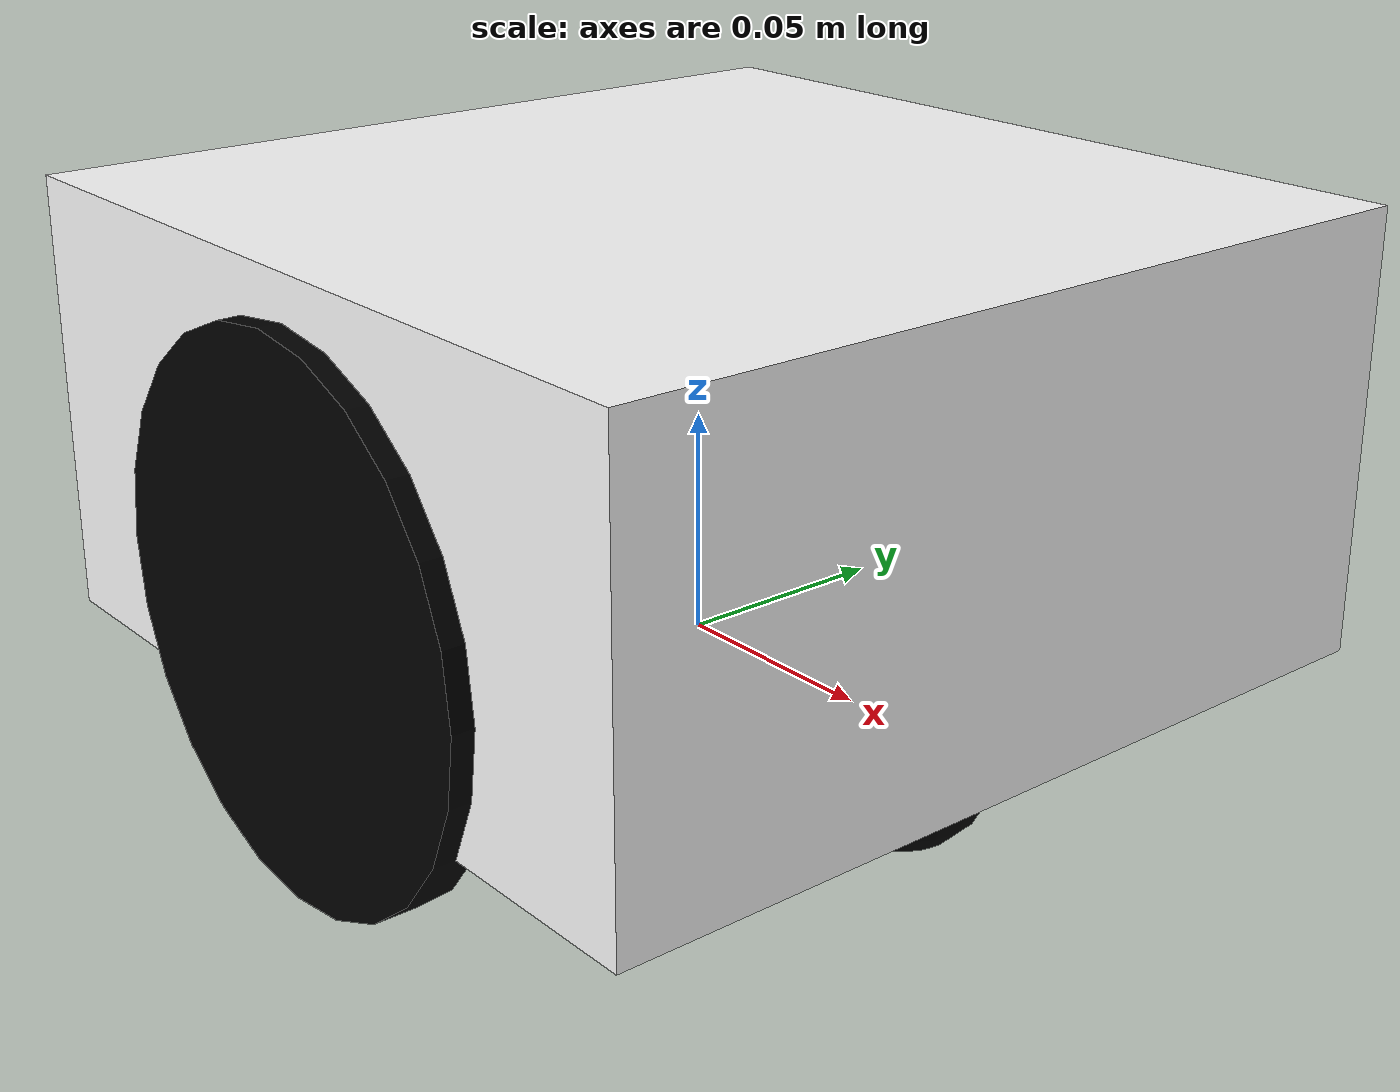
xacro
<?xml version="1.0"?>
<robot name="ogmen_bot" xmlns:xacro="http://www.ros.org/wiki/xacro">

  <xacro:include filename="inertial.urdf.xacro"/>

  <!-- Materials -->
  <material name="white">
    <color rgba="1 1 1 1"/>
  </material>

  <material name="black">
    <color rgba="0 0 0 1"/>
  </material>

  <!-- Base link -->
  <link name="base_link"/>

  <!-- Base Footprint -->
  <joint name="base_footprint_joint" type="fixed">
    <parent link="base_link"/>
    <child link="base_footprint"/>
    <origin xyz="0 0 0" rpy="0 0 0"/>
  </joint>

  <link name="base_footprint"/>

  <!-- Chassis -->
  <joint name="chassis_joint" type="fixed">
    <parent link="base_link"/>
    <child link="chassis"/>
    <origin xyz="0 0 0.05" rpy="0 0 0"/> <!-- half of height -->
  </joint>

  <link name="chassis">
    <visual>
      <origin xyz="0 0 0" rpy="0 0 0"/>
      <geometry>
        <box size="0.2 0.2 0.1"/>
      </geometry>
      <material name="white"/>
    </visual>
    <collision>
      <origin xyz="0 0 0" rpy="0 0 0"/>
      <geometry>
        <box size="0.2 0.2 0.1"/>
      </geometry>
    </collision>
    <xacro:inertial_box mass="50" x="0.2" y="0.2" z="0.1">
      <origin xyz="0 0 0" rpy="0 0 0"/>
    </xacro:inertial_box>
  </link>

  <gazebo reference="chassis">
    <material>Gazebo/white</material>
  </gazebo>

  <!-- Left Wheel -->
  <joint name="left_wheel_joint" type="continuous">
    <parent link="base_link"/>
    <child link="left_wheel"/>
    <origin xyz="0 0.1 0.03" rpy="-${pi/2} 0 0"/>
    <axis xyz="0 0 1"/>
  </joint>

  <link name="left_wheel">
    <visual>
      <geometry>
        <cylinder radius="0.06" length="0.01"/>
      </geometry>
      <material name="black"/>
    </visual>
    <collision>
      <geometry>
        <cylinder radius="0.06" length="0.01"/>
      </geometry>
    </collision>
    <xacro:inertial_cylinder mass="10" length="0.01" radius="0.06">
      <origin xyz="0 0 0" rpy="0 0 0"/>
    </xacro:inertial_cylinder>
  </link>

  <gazebo reference="left_wheel">
    <material>Gazebo/Black</material>
  </gazebo>

  <!-- Right Wheel -->
  <joint name="right_wheel_joint" type="continuous">
    <parent link="base_link"/>
    <child link="right_wheel"/>
    <origin xyz="0 -0.1 0.03" rpy="${pi/2} 0 0"/>
    <axis xyz="0 0 -1"/>
  </joint>

  <link name="right_wheel">
    <visual>
      <geometry>
        <cylinder radius="0.06" length="0.01"/>
      </geometry>
      <material name="black"/>
    </visual>
    <collision>
      <geometry>
        <cylinder radius="0.06" length="0.01"/>
      </geometry>
    </collision>
    <xacro:inertial_cylinder mass="10" length="0.01" radius="0.06">
      <origin xyz="0 0 0" rpy="0 0 0"/>
    </xacro:inertial_cylinder>
  </link>

  <gazebo reference="right_wheel">
    <material>Gazebo/Black</material>
  </gazebo>

  <!-- Caster Wheel -->
  <joint name="caster_wheel_joint" type="fixed">
    <parent link="base_link"/>
    <child link="caster_wheel"/>
    <origin xyz="0.065 0 -0.005"/> <!-- Positioned under -->
  </joint>

  <link name="caster_wheel">
    <visual>
      <geometry>
        <sphere radius="0.021"/>
      </geometry>
      <material name="black"/>
    </visual>
    <collision>
      <geometry>
        <sphere radius="0.021"/>
      </geometry>
    </collision>
    <xacro:inertial_sphere mass="50" radius="0.021">
      <origin xyz="0 0 0" rpy="0 0 0"/>
    </xacro:inertial_sphere>
  </link>

  <gazebo reference="caster_wheel">
    <material>Gazebo/Black</material>
    <mu1 value="0.01"/>
    <mu2 value="0.01"/>
  </gazebo>

</robot>
